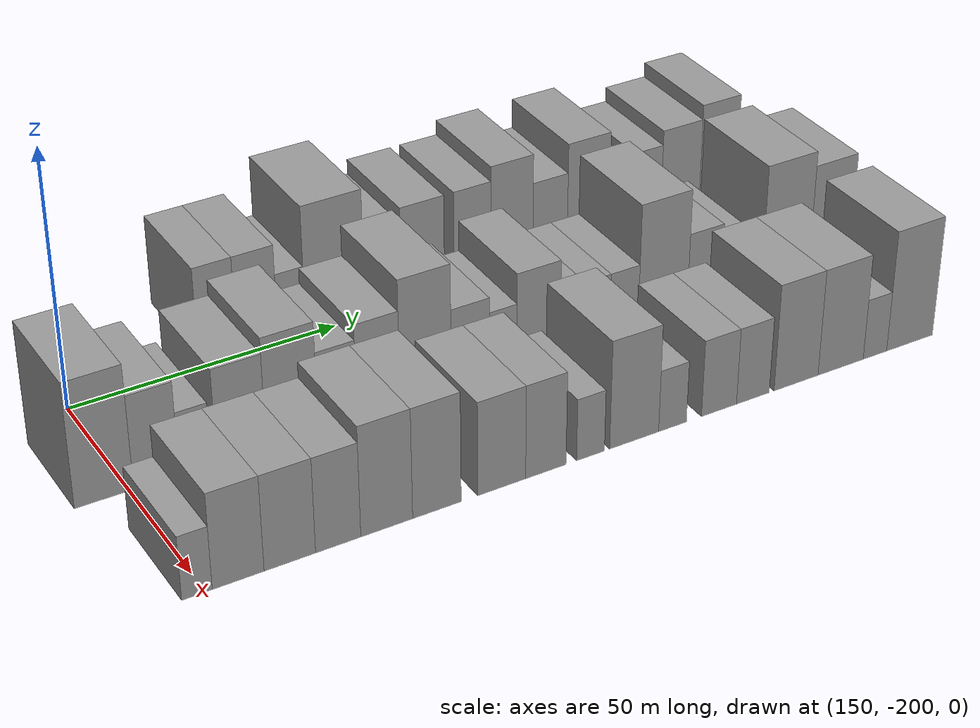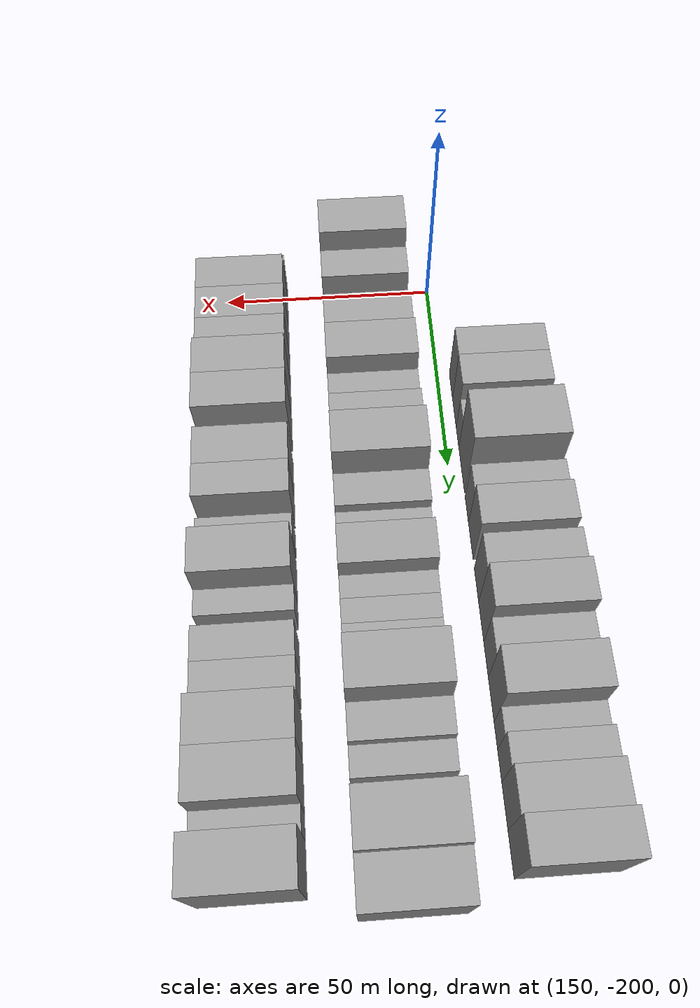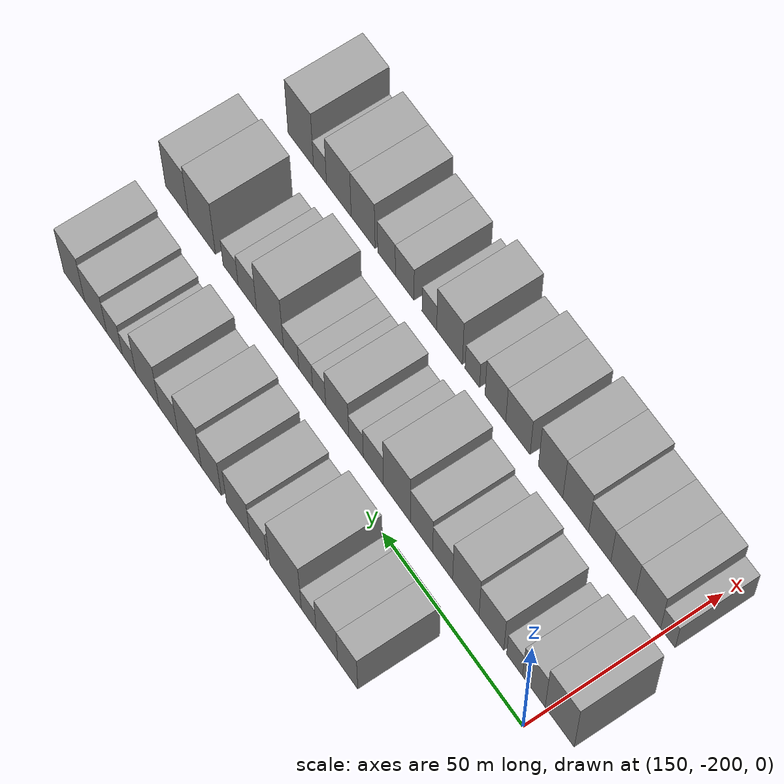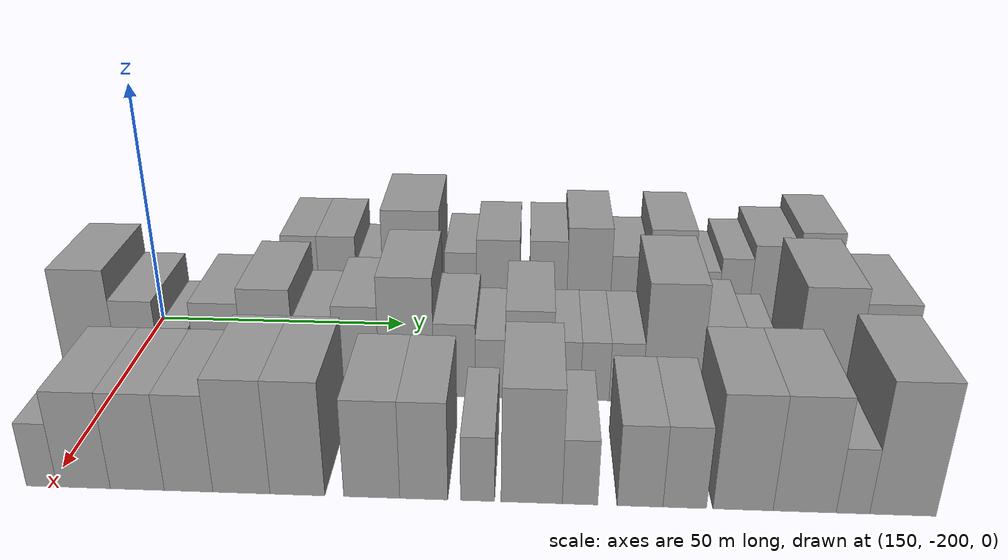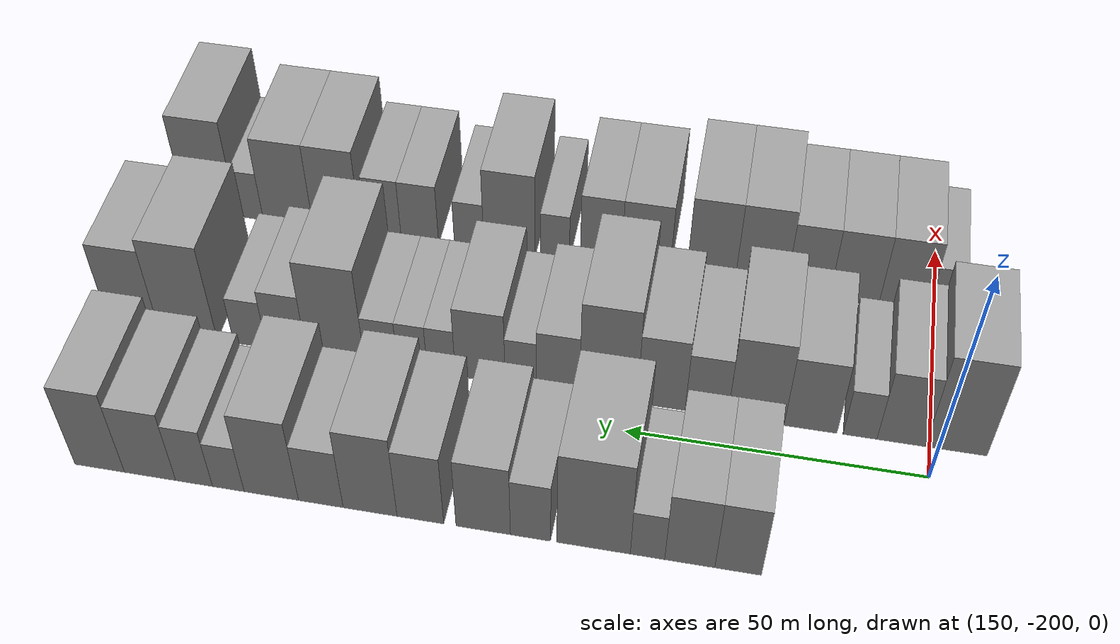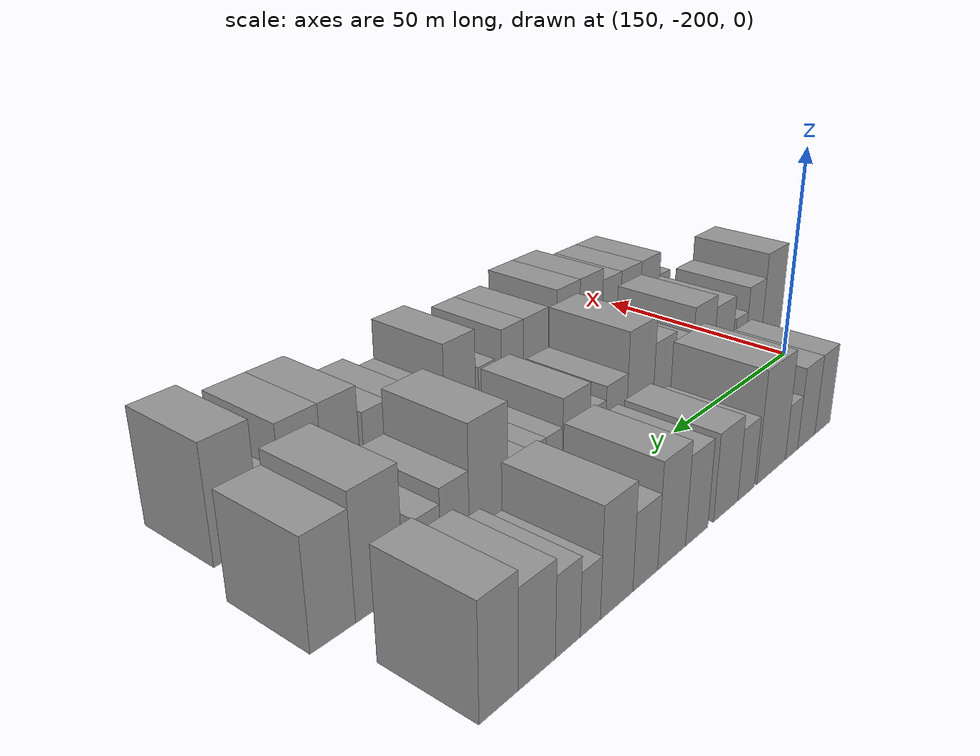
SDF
<sdf version="1.6">
 <world name="default">
  <model name="building_369">
   <static>1</static>
   <pose>137.0000 -171.2459 0 0.000000 0.000000 0.000000</pose>
   <link name="link">
    <pose>0 0 9.00 0 0 0</pose>
    <collision name="collision"><geometry><box><size>20.0000 7.2825 18.0000</size></box></geometry></collision>
    <visual name="visual">
     <cast_shadows>0</cast_shadows>
     <geometry><box><size>20.0000 7.2825 18.0000</size></box></geometry>
     <material>
      <script>
       <uri>model://grey_wall/materials/scripts</uri>
       <uri>model://grey_wall/materials/textures</uri>
       <name>vrc/grey_wall</name>
      </script>
     </material>
    </visual>
   </link>
  </model>
  <model name="building_370">
   <static>1</static>
   <pose>137.0000 -163.6743 0 0.000000 0.000000 0.000000</pose>
   <link name="link">
    <pose>0 0 9.00 0 0 0</pose>
    <collision name="collision"><geometry><box><size>20.0000 7.8607 18.0000</size></box></geometry></collision>
    <visual name="visual">
     <cast_shadows>0</cast_shadows>
     <geometry><box><size>20.0000 7.8607 18.0000</size></box></geometry>
     <material>
      <script>
       <uri>model://grey_wall/materials/scripts</uri>
       <uri>model://grey_wall/materials/textures</uri>
       <name>vrc/grey_wall</name>
      </script>
     </material>
    </visual>
   </link>
  </model>
  <model name="building_371">
   <static>1</static>
   <pose>137.0000 -157.0368 0 0.000000 0.000000 0.000000</pose>
   <link name="link">
    <pose>0 0 6.00 0 0 0</pose>
    <collision name="collision"><geometry><box><size>20.0000 5.4144 12.0000</size></box></geometry></collision>
    <visual name="visual">
     <cast_shadows>0</cast_shadows>
     <geometry><box><size>20.0000 5.4144 12.0000</size></box></geometry>
     <material>
      <script>
       <uri>model://grey_wall/materials/scripts</uri>
       <uri>model://grey_wall/materials/textures</uri>
       <name>vrc/grey_wall</name>
      </script>
     </material>
    </visual>
   </link>
  </model>
  <model name="building_372">
   <static>1</static>
   <pose>137.0000 -148.4753 0 0.000000 0.000000 0.000000</pose>
   <link name="link">
    <pose>0 0 12.00 0 0 0</pose>
    <collision name="collision"><geometry><box><size>20.0000 11.7086 24.0000</size></box></geometry></collision>
    <visual name="visual">
     <cast_shadows>0</cast_shadows>
     <geometry><box><size>20.0000 11.7086 24.0000</size></box></geometry>
     <material>
      <script>
       <uri>model://grey_wall/materials/scripts</uri>
       <uri>model://grey_wall/materials/textures</uri>
       <name>vrc/grey_wall</name>
      </script>
     </material>
    </visual>
   </link>
  </model>
  <model name="building_373">
   <static>1</static>
   <pose>137.0000 -138.3983 0 0.000000 0.000000 0.000000</pose>
   <link name="link">
    <pose>0 0 7.50 0 0 0</pose>
    <collision name="collision"><geometry><box><size>20.0000 6.4455 15.0000</size></box></geometry></collision>
    <visual name="visual">
     <cast_shadows>0</cast_shadows>
     <geometry><box><size>20.0000 6.4455 15.0000</size></box></geometry>
     <material>
      <script>
       <uri>model://grey_wall/materials/scripts</uri>
       <uri>model://grey_wall/materials/textures</uri>
       <name>vrc/grey_wall</name>
      </script>
     </material>
    </visual>
   </link>
  </model>
  <model name="building_374">
   <static>1</static>
   <pose>137.0000 -130.7742 0 0.000000 0.000000 0.000000</pose>
   <link name="link">
    <pose>0 0 9.00 0 0 0</pose>
    <collision name="collision"><geometry><box><size>20.0000 8.8028 18.0000</size></box></geometry></collision>
    <visual name="visual">
     <cast_shadows>0</cast_shadows>
     <geometry><box><size>20.0000 8.8028 18.0000</size></box></geometry>
     <material>
      <script>
       <uri>model://grey_wall/materials/scripts</uri>
       <uri>model://grey_wall/materials/textures</uri>
       <name>vrc/grey_wall</name>
      </script>
     </material>
    </visual>
   </link>
  </model>
  <model name="building_375">
   <static>1</static>
   <pose>137.0000 -120.5554 0 0.000000 0.000000 0.000000</pose>
   <link name="link">
    <pose>0 0 9.00 0 0 0</pose>
    <collision name="collision"><geometry><box><size>20.0000 7.6348 18.0000</size></box></geometry></collision>
    <visual name="visual">
     <cast_shadows>0</cast_shadows>
     <geometry><box><size>20.0000 7.6348 18.0000</size></box></geometry>
     <material>
      <script>
       <uri>model://grey_wall/materials/scripts</uri>
       <uri>model://grey_wall/materials/textures</uri>
       <name>vrc/grey_wall</name>
      </script>
     </material>
    </visual>
   </link>
  </model>
  <model name="building_376">
   <static>1</static>
   <pose>137.0000 -112.2969 0 0.000000 0.000000 0.000000</pose>
   <link name="link">
    <pose>0 0 10.50 0 0 0</pose>
    <collision name="collision"><geometry><box><size>20.0000 8.8823 21.0000</size></box></geometry></collision>
    <visual name="visual">
     <cast_shadows>0</cast_shadows>
     <geometry><box><size>20.0000 8.8823 21.0000</size></box></geometry>
     <material>
      <script>
       <uri>model://grey_wall/materials/scripts</uri>
       <uri>model://grey_wall/materials/textures</uri>
       <name>vrc/grey_wall</name>
      </script>
     </material>
    </visual>
   </link>
  </model>
  <model name="building_377">
   <static>1</static>
   <pose>137.0000 -104.1506 0 0.000000 0.000000 0.000000</pose>
   <link name="link">
    <pose>0 0 7.50 0 0 0</pose>
    <collision name="collision"><geometry><box><size>20.0000 7.4102 15.0000</size></box></geometry></collision>
    <visual name="visual">
     <cast_shadows>0</cast_shadows>
     <geometry><box><size>20.0000 7.4102 15.0000</size></box></geometry>
     <material>
      <script>
       <uri>model://grey_wall/materials/scripts</uri>
       <uri>model://grey_wall/materials/textures</uri>
       <name>vrc/grey_wall</name>
      </script>
     </material>
    </visual>
   </link>
  </model>
  <model name="building_378">
   <static>1</static>
   <pose>137.0000 -95.8927 0 0.000000 0.000000 0.000000</pose>
   <link name="link">
    <pose>0 0 10.50 0 0 0</pose>
    <collision name="collision"><geometry><box><size>20.0000 9.1056 21.0000</size></box></geometry></collision>
    <visual name="visual">
     <cast_shadows>0</cast_shadows>
     <geometry><box><size>20.0000 9.1056 21.0000</size></box></geometry>
     <material>
      <script>
       <uri>model://grey_wall/materials/scripts</uri>
       <uri>model://grey_wall/materials/textures</uri>
       <name>vrc/grey_wall</name>
      </script>
     </material>
    </visual>
   </link>
  </model>
  <model name="building_379">
   <static>1</static>
   <pose>137.0000 -88.6724 0 0.000000 0.000000 0.000000</pose>
   <link name="link">
    <pose>0 0 6.00 0 0 0</pose>
    <collision name="collision"><geometry><box><size>20.0000 5.3348 12.0000</size></box></geometry></collision>
    <visual name="visual">
     <cast_shadows>0</cast_shadows>
     <geometry><box><size>20.0000 5.3348 12.0000</size></box></geometry>
     <material>
      <script>
       <uri>model://grey_wall/materials/scripts</uri>
       <uri>model://grey_wall/materials/textures</uri>
       <name>vrc/grey_wall</name>
      </script>
     </material>
    </visual>
   </link>
  </model>
  <model name="building_380">
   <static>1</static>
   <pose>137.0000 -82.8788 0 0.000000 0.000000 0.000000</pose>
   <link name="link">
    <pose>0 0 7.50 0 0 0</pose>
    <collision name="collision"><geometry><box><size>20.0000 6.2525 15.0000</size></box></geometry></collision>
    <visual name="visual">
     <cast_shadows>0</cast_shadows>
     <geometry><box><size>20.0000 6.2525 15.0000</size></box></geometry>
     <material>
      <script>
       <uri>model://grey_wall/materials/scripts</uri>
       <uri>model://grey_wall/materials/textures</uri>
       <name>vrc/grey_wall</name>
      </script>
     </material>
    </visual>
   </link>
  </model>
  <model name="building_381">
   <static>1</static>
   <pose>137.0000 -75.3869 0 0.000000 0.000000 0.000000</pose>
   <link name="link">
    <pose>0 0 9.00 0 0 0</pose>
    <collision name="collision"><geometry><box><size>20.0000 8.7313 18.0000</size></box></geometry></collision>
    <visual name="visual">
     <cast_shadows>0</cast_shadows>
     <geometry><box><size>20.0000 8.7313 18.0000</size></box></geometry>
     <material>
      <script>
       <uri>model://grey_wall/materials/scripts</uri>
       <uri>model://grey_wall/materials/textures</uri>
       <name>vrc/grey_wall</name>
      </script>
     </material>
    </visual>
   </link>
  </model>
  <model name="building_382">
   <static>1</static>
   <pose>137.0000 -66.7642 0 0.000000 0.000000 0.000000</pose>
   <link name="link">
    <pose>0 0 10.50 0 0 0</pose>
    <collision name="collision"><geometry><box><size>20.0000 8.5143 21.0000</size></box></geometry></collision>
    <visual name="visual">
     <cast_shadows>0</cast_shadows>
     <geometry><box><size>20.0000 8.5143 21.0000</size></box></geometry>
     <material>
      <script>
       <uri>model://grey_wall/materials/scripts</uri>
       <uri>model://grey_wall/materials/textures</uri>
       <name>vrc/grey_wall</name>
      </script>
     </material>
    </visual>
   </link>
  </model>
  <model name="building_478">
   <static>1</static>
   <pose>166.0000 -204.2482 0 0.000000 0.000000 0.000000</pose>
   <link name="link">
    <pose>0 0 12.00 0 0 0</pose>
    <collision name="collision"><geometry><box><size>20.0000 10.0750 24.0000</size></box></geometry></collision>
    <visual name="visual">
     <cast_shadows>0</cast_shadows>
     <geometry><box><size>20.0000 10.0750 24.0000</size></box></geometry>
     <material>
      <script>
       <uri>model://grey_wall/materials/scripts</uri>
       <uri>model://grey_wall/materials/textures</uri>
       <name>vrc/grey_wall</name>
      </script>
     </material>
    </visual>
   </link>
  </model>
  <model name="building_479">
   <static>1</static>
   <pose>166.0000 -195.2585 0 0.000000 0.000000 0.000000</pose>
   <link name="link">
    <pose>0 0 9.00 0 0 0</pose>
    <collision name="collision"><geometry><box><size>20.0000 7.9044 18.0000</size></box></geometry></collision>
    <visual name="visual">
     <cast_shadows>0</cast_shadows>
     <geometry><box><size>20.0000 7.9044 18.0000</size></box></geometry>
     <material>
      <script>
       <uri>model://grey_wall/materials/scripts</uri>
       <uri>model://grey_wall/materials/textures</uri>
       <name>vrc/grey_wall</name>
      </script>
     </material>
    </visual>
   </link>
  </model>
  <model name="building_480">
   <static>1</static>
   <pose>166.0000 -188.5252 0 0.000000 0.000000 0.000000</pose>
   <link name="link">
    <pose>0 0 6.00 0 0 0</pose>
    <collision name="collision"><geometry><box><size>20.0000 5.5622 12.0000</size></box></geometry></collision>
    <visual name="visual">
     <cast_shadows>0</cast_shadows>
     <geometry><box><size>20.0000 5.5622 12.0000</size></box></geometry>
     <material>
      <script>
       <uri>model://grey_wall/materials/scripts</uri>
       <uri>model://grey_wall/materials/textures</uri>
       <name>vrc/grey_wall</name>
      </script>
     </material>
    </visual>
   </link>
  </model>
  <model name="building_481">
   <static>1</static>
   <pose>166.0000 -180.3434 0 0.000000 0.000000 0.000000</pose>
   <link name="link">
    <pose>0 0 9.00 0 0 0</pose>
    <collision name="collision"><geometry><box><size>20.0000 8.8013 18.0000</size></box></geometry></collision>
    <visual name="visual">
     <cast_shadows>0</cast_shadows>
     <geometry><box><size>20.0000 8.8013 18.0000</size></box></geometry>
     <material>
      <script>
       <uri>model://grey_wall/materials/scripts</uri>
       <uri>model://grey_wall/materials/textures</uri>
       <name>vrc/grey_wall</name>
      </script>
     </material>
    </visual>
   </link>
  </model>
  <model name="building_482">
   <static>1</static>
   <pose>166.0000 -171.2137 0 0.000000 0.000000 0.000000</pose>
   <link name="link">
    <pose>0 0 10.50 0 0 0</pose>
    <collision name="collision"><geometry><box><size>20.0000 9.4581 21.0000</size></box></geometry></collision>
    <visual name="visual">
     <cast_shadows>0</cast_shadows>
     <geometry><box><size>20.0000 9.4581 21.0000</size></box></geometry>
     <material>
      <script>
       <uri>model://grey_wall/materials/scripts</uri>
       <uri>model://grey_wall/materials/textures</uri>
       <name>vrc/grey_wall</name>
      </script>
     </material>
    </visual>
   </link>
  </model>
  <model name="building_483">
   <static>1</static>
   <pose>166.0000 -162.8928 0 0.000000 0.000000 0.000000</pose>
   <link name="link">
    <pose>0 0 7.50 0 0 0</pose>
    <collision name="collision"><geometry><box><size>20.0000 7.1836 15.0000</size></box></geometry></collision>
    <visual name="visual">
     <cast_shadows>0</cast_shadows>
     <geometry><box><size>20.0000 7.1836 15.0000</size></box></geometry>
     <material>
      <script>
       <uri>model://grey_wall/materials/scripts</uri>
       <uri>model://grey_wall/materials/textures</uri>
       <name>vrc/grey_wall</name>
      </script>
     </material>
    </visual>
   </link>
  </model>
  <model name="building_484">
   <static>1</static>
   <pose>166.0000 -155.2363 0 0.000000 0.000000 0.000000</pose>
   <link name="link">
    <pose>0 0 9.00 0 0 0</pose>
    <collision name="collision"><geometry><box><size>20.0000 8.1293 18.0000</size></box></geometry></collision>
    <visual name="visual">
     <cast_shadows>0</cast_shadows>
     <geometry><box><size>20.0000 8.1293 18.0000</size></box></geometry>
     <material>
      <script>
       <uri>model://grey_wall/materials/scripts</uri>
       <uri>model://grey_wall/materials/textures</uri>
       <name>vrc/grey_wall</name>
      </script>
     </material>
    </visual>
   </link>
  </model>
  <model name="building_485">
   <static>1</static>
   <pose>166.0000 -146.2356 0 0.000000 0.000000 0.000000</pose>
   <link name="link">
    <pose>0 0 12.00 0 0 0</pose>
    <collision name="collision"><geometry><box><size>20.0000 9.8722 24.0000</size></box></geometry></collision>
    <visual name="visual">
     <cast_shadows>0</cast_shadows>
     <geometry><box><size>20.0000 9.8722 24.0000</size></box></geometry>
     <material>
      <script>
       <uri>model://grey_wall/materials/scripts</uri>
       <uri>model://grey_wall/materials/textures</uri>
       <name>vrc/grey_wall</name>
      </script>
     </material>
    </visual>
   </link>
  </model>
  <model name="building_486">
   <static>1</static>
   <pose>166.0000 -137.5712 0 0.000000 0.000000 0.000000</pose>
   <link name="link">
    <pose>0 0 7.50 0 0 0</pose>
    <collision name="collision"><geometry><box><size>20.0000 7.4566 15.0000</size></box></geometry></collision>
    <visual name="visual">
     <cast_shadows>0</cast_shadows>
     <geometry><box><size>20.0000 7.4566 15.0000</size></box></geometry>
     <material>
      <script>
       <uri>model://grey_wall/materials/scripts</uri>
       <uri>model://grey_wall/materials/textures</uri>
       <name>vrc/grey_wall</name>
      </script>
     </material>
    </visual>
   </link>
  </model>
  <model name="building_487">
   <static>1</static>
   <pose>166.0000 -131.1493 0 0.000000 0.000000 0.000000</pose>
   <link name="link">
    <pose>0 0 6.00 0 0 0</pose>
    <collision name="collision"><geometry><box><size>20.0000 5.3871 12.0000</size></box></geometry></collision>
    <visual name="visual">
     <cast_shadows>0</cast_shadows>
     <geometry><box><size>20.0000 5.3871 12.0000</size></box></geometry>
     <material>
      <script>
       <uri>model://grey_wall/materials/scripts</uri>
       <uri>model://grey_wall/materials/textures</uri>
       <name>vrc/grey_wall</name>
      </script>
     </material>
    </visual>
   </link>
  </model>
  <model name="building_488">
   <static>1</static>
   <pose>166.0000 -124.1095 0 0.000000 0.000000 0.000000</pose>
   <link name="link">
    <pose>0 0 9.00 0 0 0</pose>
    <collision name="collision"><geometry><box><size>20.0000 8.6924 18.0000</size></box></geometry></collision>
    <visual name="visual">
     <cast_shadows>0</cast_shadows>
     <geometry><box><size>20.0000 8.6924 18.0000</size></box></geometry>
     <material>
      <script>
       <uri>model://grey_wall/materials/scripts</uri>
       <uri>model://grey_wall/materials/textures</uri>
       <name>vrc/grey_wall</name>
      </script>
     </material>
    </visual>
   </link>
  </model>
  <model name="building_489">
   <static>1</static>
   <pose>166.0000 -117.2900 0 0.000000 0.000000 0.000000</pose>
   <link name="link">
    <pose>0 0 6.00 0 0 0</pose>
    <collision name="collision"><geometry><box><size>20.0000 4.9468 12.0000</size></box></geometry></collision>
    <visual name="visual">
     <cast_shadows>0</cast_shadows>
     <geometry><box><size>20.0000 4.9468 12.0000</size></box></geometry>
     <material>
      <script>
       <uri>model://grey_wall/materials/scripts</uri>
       <uri>model://grey_wall/materials/textures</uri>
       <name>vrc/grey_wall</name>
      </script>
     </material>
    </visual>
   </link>
  </model>
  <model name="building_490">
   <static>1</static>
   <pose>166.0000 -112.2122 0 0.000000 0.000000 0.000000</pose>
   <link name="link">
    <pose>0 0 6.00 0 0 0</pose>
    <collision name="collision"><geometry><box><size>20.0000 5.2087 12.0000</size></box></geometry></collision>
    <visual name="visual">
     <cast_shadows>0</cast_shadows>
     <geometry><box><size>20.0000 5.2087 12.0000</size></box></geometry>
     <material>
      <script>
       <uri>model://grey_wall/materials/scripts</uri>
       <uri>model://grey_wall/materials/textures</uri>
       <name>vrc/grey_wall</name>
      </script>
     </material>
    </visual>
   </link>
  </model>
  <model name="building_491">
   <static>1</static>
   <pose>166.0000 -106.6579 0 0.000000 0.000000 0.000000</pose>
   <link name="link">
    <pose>0 0 6.00 0 0 0</pose>
    <collision name="collision"><geometry><box><size>20.0000 5.8998 12.0000</size></box></geometry></collision>
    <visual name="visual">
     <cast_shadows>0</cast_shadows>
     <geometry><box><size>20.0000 5.8998 12.0000</size></box></geometry>
     <material>
      <script>
       <uri>model://grey_wall/materials/scripts</uri>
       <uri>model://grey_wall/materials/textures</uri>
       <name>vrc/grey_wall</name>
      </script>
     </material>
    </visual>
   </link>
  </model>
  <model name="building_492">
   <static>1</static>
   <pose>166.0000 -98.5281 0 0.000000 0.000000 0.000000</pose>
   <link name="link">
    <pose>0 0 12.00 0 0 0</pose>
    <collision name="collision"><geometry><box><size>20.0000 10.3599 24.0000</size></box></geometry></collision>
    <visual name="visual">
     <cast_shadows>0</cast_shadows>
     <geometry><box><size>20.0000 10.3599 24.0000</size></box></geometry>
     <material>
      <script>
       <uri>model://grey_wall/materials/scripts</uri>
       <uri>model://grey_wall/materials/textures</uri>
       <name>vrc/grey_wall</name>
      </script>
     </material>
    </visual>
   </link>
  </model>
  <model name="building_493">
   <static>1</static>
   <pose>166.0000 -89.7589 0 0.000000 0.000000 0.000000</pose>
   <link name="link">
    <pose>0 0 7.50 0 0 0</pose>
    <collision name="collision"><geometry><box><size>20.0000 7.1785 15.0000</size></box></geometry></collision>
    <visual name="visual">
     <cast_shadows>0</cast_shadows>
     <geometry><box><size>20.0000 7.1785 15.0000</size></box></geometry>
     <material>
      <script>
       <uri>model://grey_wall/materials/scripts</uri>
       <uri>model://grey_wall/materials/textures</uri>
       <name>vrc/grey_wall</name>
      </script>
     </material>
    </visual>
   </link>
  </model>
  <model name="building_494">
   <static>1</static>
   <pose>166.0000 -83.1954 0 0.000000 0.000000 0.000000</pose>
   <link name="link">
    <pose>0 0 6.00 0 0 0</pose>
    <collision name="collision"><geometry><box><size>20.0000 5.9485 12.0000</size></box></geometry></collision>
    <visual name="visual">
     <cast_shadows>0</cast_shadows>
     <geometry><box><size>20.0000 5.9485 12.0000</size></box></geometry>
     <material>
      <script>
       <uri>model://grey_wall/materials/scripts</uri>
       <uri>model://grey_wall/materials/textures</uri>
       <name>vrc/grey_wall</name>
      </script>
     </material>
    </visual>
   </link>
  </model>
  <model name="building_495">
   <static>1</static>
   <pose>166.0000 -71.9259 0 0.000000 0.000000 0.000000</pose>
   <link name="link">
    <pose>0 0 12.00 0 0 0</pose>
    <collision name="collision"><geometry><box><size>20.0000 10.5905 24.0000</size></box></geometry></collision>
    <visual name="visual">
     <cast_shadows>0</cast_shadows>
     <geometry><box><size>20.0000 10.5905 24.0000</size></box></geometry>
     <material>
      <script>
       <uri>model://grey_wall/materials/scripts</uri>
       <uri>model://grey_wall/materials/textures</uri>
       <name>vrc/grey_wall</name>
      </script>
     </material>
    </visual>
   </link>
  </model>
  <model name="building_496">
   <static>1</static>
   <pose>166.0000 -61.9981 0 0.000000 0.000000 0.000000</pose>
   <link name="link">
    <pose>0 0 10.50 0 0 0</pose>
    <collision name="collision"><geometry><box><size>20.0000 9.2651 21.0000</size></box></geometry></collision>
    <visual name="visual">
     <cast_shadows>0</cast_shadows>
     <geometry><box><size>20.0000 9.2651 21.0000</size></box></geometry>
     <material>
      <script>
       <uri>model://grey_wall/materials/scripts</uri>
       <uri>model://grey_wall/materials/textures</uri>
       <name>vrc/grey_wall</name>
      </script>
     </material>
    </visual>
   </link>
  </model>
  <model name="building_596">
   <static>1</static>
   <pose>195.0000 -201.3652 0 0.000000 0.000000 0.000000</pose>
   <link name="link">
    <pose>0 0 6.00 0 0 0</pose>
    <collision name="collision"><geometry><box><size>20.0000 5.0005 12.0000</size></box></geometry></collision>
    <visual name="visual">
     <cast_shadows>0</cast_shadows>
     <geometry><box><size>20.0000 5.0005 12.0000</size></box></geometry>
     <material>
      <script>
       <uri>model://grey_wall/materials/scripts</uri>
       <uri>model://grey_wall/materials/textures</uri>
       <name>vrc/grey_wall</name>
      </script>
     </material>
    </visual>
   </link>
  </model>
  <model name="building_597">
   <static>1</static>
   <pose>195.0000 -194.5604 0 0.000000 0.000000 0.000000</pose>
   <link name="link">
    <pose>0 0 9.00 0 0 0</pose>
    <collision name="collision"><geometry><box><size>20.0000 8.6091 18.0000</size></box></geometry></collision>
    <visual name="visual">
     <cast_shadows>0</cast_shadows>
     <geometry><box><size>20.0000 8.6091 18.0000</size></box></geometry>
     <material>
      <script>
       <uri>model://grey_wall/materials/scripts</uri>
       <uri>model://grey_wall/materials/textures</uri>
       <name>vrc/grey_wall</name>
      </script>
     </material>
    </visual>
   </link>
  </model>
  <model name="building_598">
   <static>1</static>
   <pose>195.0000 -185.8907 0 0.000000 0.000000 0.000000</pose>
   <link name="link">
    <pose>0 0 9.00 0 0 0</pose>
    <collision name="collision"><geometry><box><size>20.0000 8.7302 18.0000</size></box></geometry></collision>
    <visual name="visual">
     <cast_shadows>0</cast_shadows>
     <geometry><box><size>20.0000 8.7302 18.0000</size></box></geometry>
     <material>
      <script>
       <uri>model://grey_wall/materials/scripts</uri>
       <uri>model://grey_wall/materials/textures</uri>
       <name>vrc/grey_wall</name>
      </script>
     </material>
    </visual>
   </link>
  </model>
  <model name="building_599">
   <static>1</static>
   <pose>195.0000 -177.6258 0 0.000000 0.000000 0.000000</pose>
   <link name="link">
    <pose>0 0 9.00 0 0 0</pose>
    <collision name="collision"><geometry><box><size>20.0000 7.7998 18.0000</size></box></geometry></collision>
    <visual name="visual">
     <cast_shadows>0</cast_shadows>
     <geometry><box><size>20.0000 7.7998 18.0000</size></box></geometry>
     <material>
      <script>
       <uri>model://grey_wall/materials/scripts</uri>
       <uri>model://grey_wall/materials/textures</uri>
       <name>vrc/grey_wall</name>
      </script>
     </material>
    </visual>
   </link>
  </model>
  <model name="building_600">
   <static>1</static>
   <pose>195.0000 -169.1599 0 0.000000 0.000000 0.000000</pose>
   <link name="link">
    <pose>0 0 10.50 0 0 0</pose>
    <collision name="collision"><geometry><box><size>20.0000 9.1319 21.0000</size></box></geometry></collision>
    <visual name="visual">
     <cast_shadows>0</cast_shadows>
     <geometry><box><size>20.0000 9.1319 21.0000</size></box></geometry>
     <material>
      <script>
       <uri>model://grey_wall/materials/scripts</uri>
       <uri>model://grey_wall/materials/textures</uri>
       <name>vrc/grey_wall</name>
      </script>
     </material>
    </visual>
   </link>
  </model>
  <model name="building_601">
   <static>1</static>
   <pose>195.0000 -160.2340 0 0.000000 0.000000 0.000000</pose>
   <link name="link">
    <pose>0 0 10.50 0 0 0</pose>
    <collision name="collision"><geometry><box><size>20.0000 8.7198 21.0000</size></box></geometry></collision>
    <visual name="visual">
     <cast_shadows>0</cast_shadows>
     <geometry><box><size>20.0000 8.7198 21.0000</size></box></geometry>
     <material>
      <script>
       <uri>model://grey_wall/materials/scripts</uri>
       <uri>model://grey_wall/materials/textures</uri>
       <name>vrc/grey_wall</name>
      </script>
     </material>
    </visual>
   </link>
  </model>
  <model name="building_602">
   <static>1</static>
   <pose>195.0000 -148.4536 0 0.000000 0.000000 0.000000</pose>
   <link name="link">
    <pose>0 0 9.00 0 0 0</pose>
    <collision name="collision"><geometry><box><size>20.0000 8.8411 18.0000</size></box></geometry></collision>
    <visual name="visual">
     <cast_shadows>0</cast_shadows>
     <geometry><box><size>20.0000 8.8411 18.0000</size></box></geometry>
     <material>
      <script>
       <uri>model://grey_wall/materials/scripts</uri>
       <uri>model://grey_wall/materials/textures</uri>
       <name>vrc/grey_wall</name>
      </script>
     </material>
    </visual>
   </link>
  </model>
  <model name="building_603">
   <static>1</static>
   <pose>195.0000 -140.2510 0 0.000000 0.000000 0.000000</pose>
   <link name="link">
    <pose>0 0 9.00 0 0 0</pose>
    <collision name="collision"><geometry><box><size>20.0000 7.5640 18.0000</size></box></geometry></collision>
    <visual name="visual">
     <cast_shadows>0</cast_shadows>
     <geometry><box><size>20.0000 7.5640 18.0000</size></box></geometry>
     <material>
      <script>
       <uri>model://grey_wall/materials/scripts</uri>
       <uri>model://grey_wall/materials/textures</uri>
       <name>vrc/grey_wall</name>
      </script>
     </material>
    </visual>
   </link>
  </model>
  <model name="building_604">
   <static>1</static>
   <pose>195.0000 -131.8045 0 0.000000 0.000000 0.000000</pose>
   <link name="link">
    <pose>0 0 6.00 0 0 0</pose>
    <collision name="collision"><geometry><box><size>20.0000 5.3291 12.0000</size></box></geometry></collision>
    <visual name="visual">
     <cast_shadows>0</cast_shadows>
     <geometry><box><size>20.0000 5.3291 12.0000</size></box></geometry>
     <material>
      <script>
       <uri>model://grey_wall/materials/scripts</uri>
       <uri>model://grey_wall/materials/textures</uri>
       <name>vrc/grey_wall</name>
      </script>
     </material>
    </visual>
   </link>
  </model>
  <model name="building_605">
   <static>1</static>
   <pose>195.0000 -123.3702 0 0.000000 0.000000 0.000000</pose>
   <link name="link">
    <pose>0 0 10.50 0 0 0</pose>
    <collision name="collision"><geometry><box><size>20.0000 9.5394 21.0000</size></box></geometry></collision>
    <visual name="visual">
     <cast_shadows>0</cast_shadows>
     <geometry><box><size>20.0000 9.5394 21.0000</size></box></geometry>
     <material>
      <script>
       <uri>model://grey_wall/materials/scripts</uri>
       <uri>model://grey_wall/materials/textures</uri>
       <name>vrc/grey_wall</name>
      </script>
     </material>
    </visual>
   </link>
  </model>
  <model name="building_606">
   <static>1</static>
   <pose>195.0000 -115.8494 0 0.000000 0.000000 0.000000</pose>
   <link name="link">
    <pose>0 0 6.00 0 0 0</pose>
    <collision name="collision"><geometry><box><size>20.0000 5.5024 12.0000</size></box></geometry></collision>
    <visual name="visual">
     <cast_shadows>0</cast_shadows>
     <geometry><box><size>20.0000 5.5024 12.0000</size></box></geometry>
     <material>
      <script>
       <uri>model://grey_wall/materials/scripts</uri>
       <uri>model://grey_wall/materials/textures</uri>
       <name>vrc/grey_wall</name>
      </script>
     </material>
    </visual>
   </link>
  </model>
  <model name="building_607">
   <static>1</static>
   <pose>195.0000 -106.5667 0 0.000000 0.000000 0.000000</pose>
   <link name="link">
    <pose>0 0 7.50 0 0 0</pose>
    <collision name="collision"><geometry><box><size>20.0000 7.0628 15.0000</size></box></geometry></collision>
    <visual name="visual">
     <cast_shadows>0</cast_shadows>
     <geometry><box><size>20.0000 7.0628 15.0000</size></box></geometry>
     <material>
      <script>
       <uri>model://grey_wall/materials/scripts</uri>
       <uri>model://grey_wall/materials/textures</uri>
       <name>vrc/grey_wall</name>
      </script>
     </material>
    </visual>
   </link>
  </model>
  <model name="building_608">
   <static>1</static>
   <pose>195.0000 -99.6846 0 0.000000 0.000000 0.000000</pose>
   <link name="link">
    <pose>0 0 7.50 0 0 0</pose>
    <collision name="collision"><geometry><box><size>20.0000 6.7014 15.0000</size></box></geometry></collision>
    <visual name="visual">
     <cast_shadows>0</cast_shadows>
     <geometry><box><size>20.0000 6.7014 15.0000</size></box></geometry>
     <material>
      <script>
       <uri>model://grey_wall/materials/scripts</uri>
       <uri>model://grey_wall/materials/textures</uri>
       <name>vrc/grey_wall</name>
      </script>
     </material>
    </visual>
   </link>
  </model>
  <model name="building_609">
   <static>1</static>
   <pose>195.0000 -90.7495 0 0.000000 0.000000 0.000000</pose>
   <link name="link">
    <pose>0 0 10.50 0 0 0</pose>
    <collision name="collision"><geometry><box><size>20.0000 9.1689 21.0000</size></box></geometry></collision>
    <visual name="visual">
     <cast_shadows>0</cast_shadows>
     <geometry><box><size>20.0000 9.1689 21.0000</size></box></geometry>
     <material>
      <script>
       <uri>model://grey_wall/materials/scripts</uri>
       <uri>model://grey_wall/materials/textures</uri>
       <name>vrc/grey_wall</name>
      </script>
     </material>
    </visual>
   </link>
  </model>
  <model name="building_610">
   <static>1</static>
   <pose>195.0000 -81.3643 0 0.000000 0.000000 0.000000</pose>
   <link name="link">
    <pose>0 0 10.50 0 0 0</pose>
    <collision name="collision"><geometry><box><size>20.0000 9.6015 21.0000</size></box></geometry></collision>
    <visual name="visual">
     <cast_shadows>0</cast_shadows>
     <geometry><box><size>20.0000 9.6015 21.0000</size></box></geometry>
     <material>
      <script>
       <uri>model://grey_wall/materials/scripts</uri>
       <uri>model://grey_wall/materials/textures</uri>
       <name>vrc/grey_wall</name>
      </script>
     </material>
    </visual>
   </link>
  </model>
  <model name="building_611">
   <static>1</static>
   <pose>195.0000 -74.0321 0 0.000000 0.000000 0.000000</pose>
   <link name="link">
    <pose>0 0 6.00 0 0 0</pose>
    <collision name="collision"><geometry><box><size>20.0000 5.0630 12.0000</size></box></geometry></collision>
    <visual name="visual">
     <cast_shadows>0</cast_shadows>
     <geometry><box><size>20.0000 5.0630 12.0000</size></box></geometry>
     <material>
      <script>
       <uri>model://grey_wall/materials/scripts</uri>
       <uri>model://grey_wall/materials/textures</uri>
       <name>vrc/grey_wall</name>
      </script>
     </material>
    </visual>
   </link>
  </model>
  <model name="building_612">
   <static>1</static>
   <pose>195.0000 -66.4953 0 0.000000 0.000000 0.000000</pose>
   <link name="link">
    <pose>0 0 12.00 0 0 0</pose>
    <collision name="collision"><geometry><box><size>20.0000 10.0106 24.0000</size></box></geometry></collision>
    <visual name="visual">
     <cast_shadows>0</cast_shadows>
     <geometry><box><size>20.0000 10.0106 24.0000</size></box></geometry>
     <material>
      <script>
       <uri>model://grey_wall/materials/scripts</uri>
       <uri>model://grey_wall/materials/textures</uri>
       <name>vrc/grey_wall</name>
      </script>
     </material>
    </visual>
   </link>
  </model>
 </world>
</sdf>
